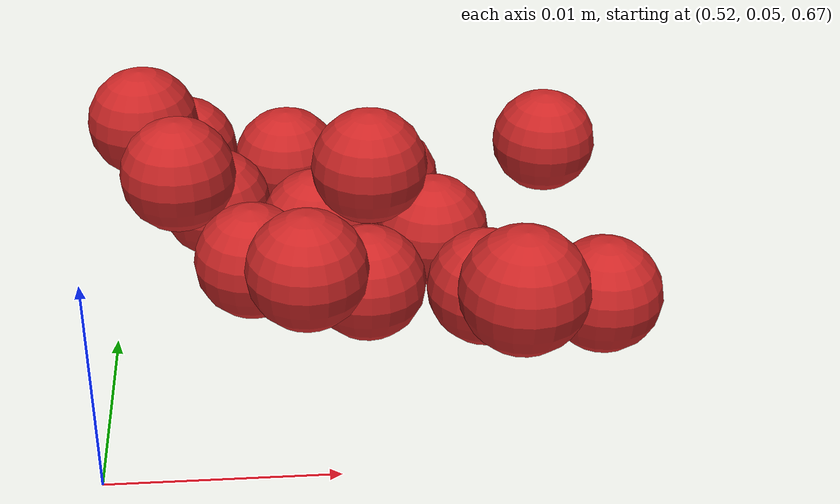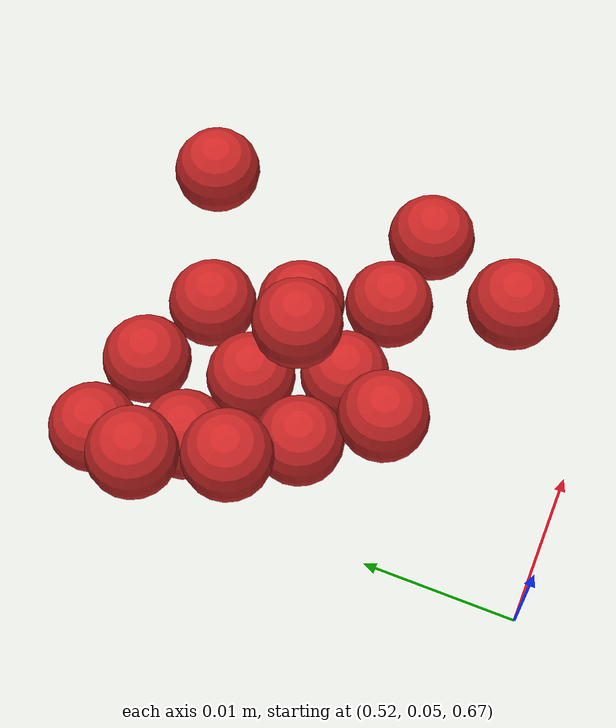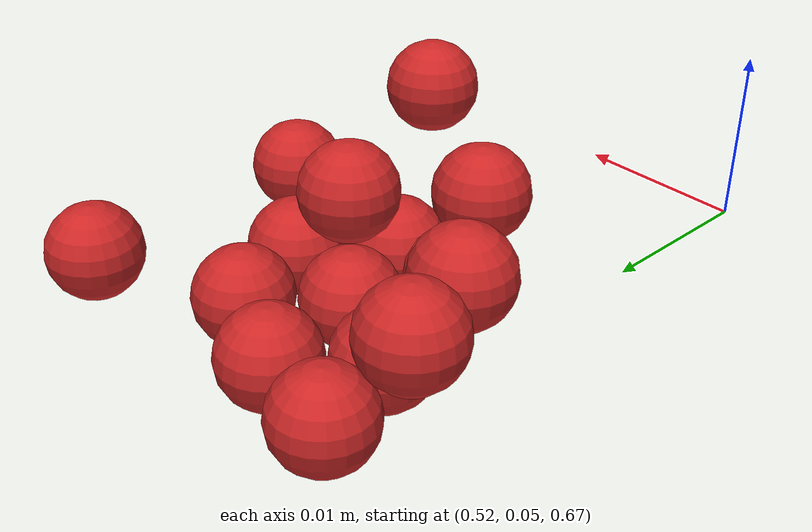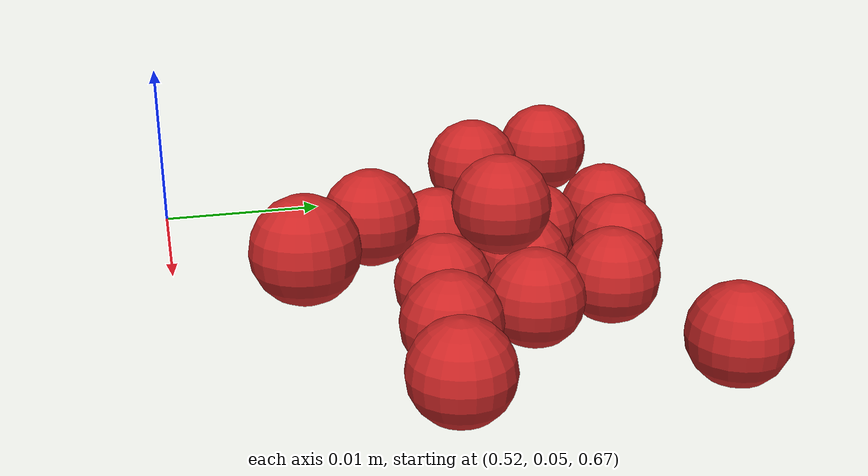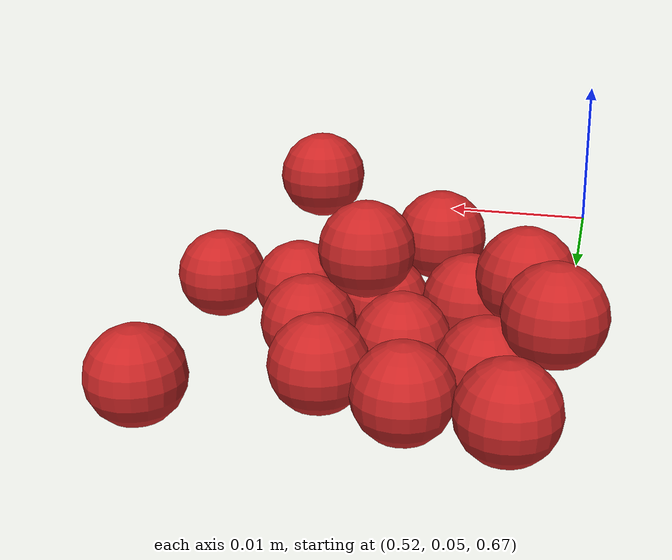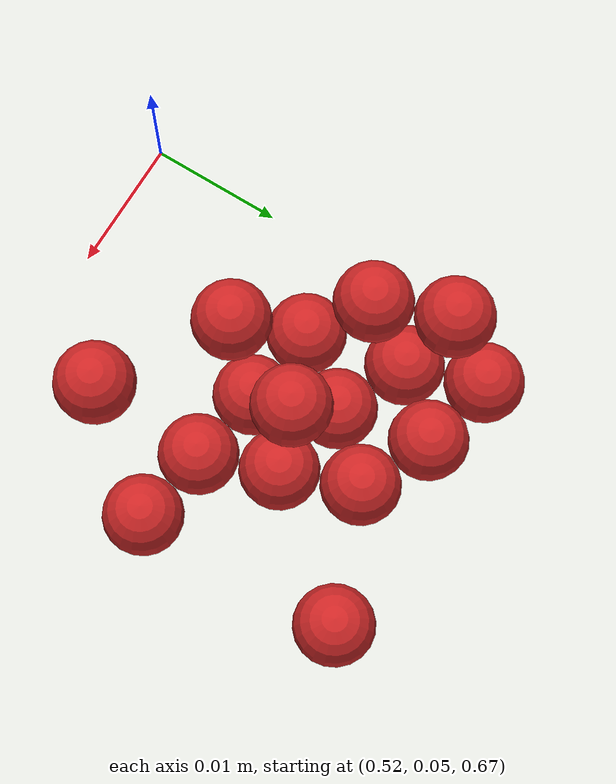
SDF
<sdf version="1.4">
 <world name="default">
  <model name="ground_plane">
   <static>1</static>
   <link name="link">
    <collision name="collision">
     <geometry><plane><normal>0 0 1</normal><size>100 100</size></plane></geometry>
     <surface><friction><ode><mu>100</mu><mu2>50</mu2></ode></friction></surface>
    </collision>
    <visual name="visual">
     <cast_shadows>0</cast_shadows>
     <geometry><plane><normal>0 0 1</normal><size>100 100</size></plane></geometry>
     <material>
      <script><uri>file://media/materials/scripts/gazebo.material</uri><name>Gazebo/Grey</name></script>
     </material>
    </visual>
    <velocity_decay><linear>0</linear><angular>0</angular></velocity_decay>
   </link>
  </model>
  <model name="sphere0">
   <pose>-0.001602 -0.00214 -0.026625 -0.000708 -0.001109 -1.3e-05</pose>
   <link name="link">
    <pose>0.534545 0.067517 0.694885 0 -0 0</pose>
    <inertial>
     <mass>1e-08</mass>
     <inertia><ixx>4e-08</ixx><ixy>0</ixy><ixz>0</ixz><iyy>4e-08</iyy><iyz>0</iyz><izz>4e-08</izz></inertia>
    </inertial>
    <collision name="collision">
     <surface>
      <bounce><restitution_coefficient>0.5</restitution_coefficient><threshold>0</threshold></bounce>
      <contact><ode><kp>1e+08</kp><kd>1</kd></ode></contact>
      <friction><ode><mu>1e-06</mu><mu2>1e-06</mu2></ode></friction>
     </surface>
     <geometry><sphere><radius>0.003</radius></sphere></geometry>
    </collision>
    <visual name="visual">
     <geometry><sphere><radius>0.003</radius></sphere></geometry>
     <material>
      <script><uri>file://media/materials/scripts/gazebo.material</uri><name>Gazebo/Red</name></script>
     </material>
    </visual>
    <velocity_decay><linear>0</linear><angular>0</angular></velocity_decay>
   </link>
   <static>0</static>
  </model>
  <model name="sphere4">
   <pose>-0.004573 -0.00176 -0.026239 0.000105 -0.000252 -3.30872e-24</pose>
   <link name="link">
    <pose>0.534545 0.073517 0.694885 0 -0 0</pose>
    <inertial>
     <mass>1e-08</mass>
     <inertia><ixx>4e-08</ixx><ixy>0</ixy><ixz>0</ixz><iyy>4e-08</iyy><iyz>0</iyz><izz>4e-08</izz></inertia>
    </inertial>
    <collision name="collision">
     <surface>
      <bounce><restitution_coefficient>0.5</restitution_coefficient><threshold>0</threshold></bounce>
      <contact><ode><kp>1e+08</kp><kd>1</kd></ode></contact>
      <friction><ode><mu>1e-06</mu><mu2>1e-06</mu2></ode></friction>
     </surface>
     <geometry><sphere><radius>0.003</radius></sphere></geometry>
    </collision>
    <visual name="visual">
     <geometry><sphere><radius>0.003</radius></sphere></geometry>
     <material>
      <script><uri>file://media/materials/scripts/gazebo.material</uri><name>Gazebo/Red</name></script>
     </material>
    </visual>
    <velocity_decay><linear>0</linear><angular>0</angular></velocity_decay>
   </link>
   <static>0</static>
  </model>
  <model name="sphere5">
   <pose>-0.006587 0.002887 -0.026107 0.000405 -0.000181 0</pose>
   <link name="link">
    <pose>0.540545 0.073517 0.694885 0 -0 0</pose>
    <inertial>
     <mass>1e-08</mass>
     <inertia><ixx>4e-08</ixx><ixy>0</ixy><ixz>0</ixz><iyy>4e-08</iyy><iyz>0</iyz><izz>4e-08</izz></inertia>
    </inertial>
    <collision name="collision">
     <surface>
      <bounce><restitution_coefficient>0.5</restitution_coefficient><threshold>0</threshold></bounce>
      <contact><ode><kp>1e+08</kp><kd>1</kd></ode></contact>
      <friction><ode><mu>1e-06</mu><mu2>1e-06</mu2></ode></friction>
     </surface>
     <geometry><sphere><radius>0.003</radius></sphere></geometry>
    </collision>
    <visual name="visual">
     <geometry><sphere><radius>0.003</radius></sphere></geometry>
     <material>
      <script><uri>file://media/materials/scripts/gazebo.material</uri><name>Gazebo/Red</name></script>
     </material>
    </visual>
    <velocity_decay><linear>0</linear><angular>0</angular></velocity_decay>
   </link>
   <static>0</static>
  </model>
  <model name="sphere10">
   <pose>-0.003062 0.000418 -0.02591 0.000197 7.5e-05 -1.65436e-24</pose>
   <link name="link">
    <pose>0.546545 0.079517 0.694885 0 -0 0</pose>
    <inertial>
     <mass>1e-08</mass>
     <inertia><ixx>4e-08</ixx><ixy>0</ixy><ixz>0</ixz><iyy>4e-08</iyy><iyz>0</iyz><izz>4e-08</izz></inertia>
    </inertial>
    <collision name="collision">
     <surface>
      <bounce><restitution_coefficient>0.5</restitution_coefficient><threshold>0</threshold></bounce>
      <contact><ode><kp>1e+08</kp><kd>1</kd></ode></contact>
      <friction><ode><mu>1e-06</mu><mu2>1e-06</mu2></ode></friction>
     </surface>
     <geometry><sphere><radius>0.003</radius></sphere></geometry>
    </collision>
    <visual name="visual">
     <geometry><sphere><radius>0.003</radius></sphere></geometry>
     <material>
      <script><uri>file://media/materials/scripts/gazebo.material</uri><name>Gazebo/Red</name></script>
     </material>
    </visual>
    <velocity_decay><linear>0</linear><angular>0</angular></velocity_decay>
   </link>
   <static>0</static>
  </model>
  <model name="sphere16">
   <pose>-0.008166 0.000151 -0.031257 0.000916 -9.1e-05 -0.000279</pose>
   <link name="link">
    <pose>0.534545 0.067517 0.700885 0 -0 0</pose>
    <inertial>
     <mass>1e-08</mass>
     <inertia><ixx>4e-08</ixx><ixy>0</ixy><ixz>0</ixz><iyy>4e-08</iyy><iyz>0</iyz><izz>4e-08</izz></inertia>
    </inertial>
    <collision name="collision">
     <surface>
      <bounce><restitution_coefficient>0.5</restitution_coefficient><threshold>0</threshold></bounce>
      <contact><ode><kp>1e+08</kp><kd>1</kd></ode></contact>
      <friction><ode><mu>1e-06</mu><mu2>1e-06</mu2></ode></friction>
     </surface>
     <geometry><sphere><radius>0.003</radius></sphere></geometry>
    </collision>
    <visual name="visual">
     <geometry><sphere><radius>0.003</radius></sphere></geometry>
     <material>
      <script><uri>file://media/materials/scripts/gazebo.material</uri><name>Gazebo/Red</name></script>
     </material>
    </visual>
    <velocity_decay><linear>0</linear><angular>0</angular></velocity_decay>
   </link>
   <static>0</static>
  </model>
  <model name="sphere17">
   <pose>-0.001929 -0.010718 -0.02668 0.000136 -0.000102 0.000212</pose>
   <link name="link">
    <pose>0.540545 0.067517 0.700885 0 -0 0</pose>
    <inertial>
     <mass>1e-08</mass>
     <inertia><ixx>4e-08</ixx><ixy>0</ixy><ixz>0</ixz><iyy>4e-08</iyy><iyz>0</iyz><izz>4e-08</izz></inertia>
    </inertial>
    <collision name="collision">
     <surface>
      <bounce><restitution_coefficient>0.5</restitution_coefficient><threshold>0</threshold></bounce>
      <contact><ode><kp>1e+08</kp><kd>1</kd></ode></contact>
      <friction><ode><mu>1e-06</mu><mu2>1e-06</mu2></ode></friction>
     </surface>
     <geometry><sphere><radius>0.003</radius></sphere></geometry>
    </collision>
    <visual name="visual">
     <geometry><sphere><radius>0.003</radius></sphere></geometry>
     <material>
      <script><uri>file://media/materials/scripts/gazebo.material</uri><name>Gazebo/Red</name></script>
     </material>
    </visual>
    <velocity_decay><linear>0</linear><angular>0</angular></velocity_decay>
   </link>
   <static>0</static>
  </model>
  <model name="sphere20">
   <pose>-0.009894 0.000147 -0.03225 -0.000743 -0.000452 -3e-05</pose>
   <link name="link">
    <pose>0.534545 0.073517 0.700885 0 -0 0</pose>
    <inertial>
     <mass>1e-08</mass>
     <inertia><ixx>4e-08</ixx><ixy>0</ixy><ixz>0</ixz><iyy>4e-08</iyy><iyz>0</iyz><izz>4e-08</izz></inertia>
    </inertial>
    <collision name="collision">
     <surface>
      <bounce><restitution_coefficient>0.5</restitution_coefficient><threshold>0</threshold></bounce>
      <contact><ode><kp>1e+08</kp><kd>1</kd></ode></contact>
      <friction><ode><mu>1e-06</mu><mu2>1e-06</mu2></ode></friction>
     </surface>
     <geometry><sphere><radius>0.003</radius></sphere></geometry>
    </collision>
    <visual name="visual">
     <geometry><sphere><radius>0.003</radius></sphere></geometry>
     <material>
      <script><uri>file://media/materials/scripts/gazebo.material</uri><name>Gazebo/Red</name></script>
     </material>
    </visual>
    <velocity_decay><linear>0</linear><angular>0</angular></velocity_decay>
   </link>
   <static>0</static>
  </model>
  <model name="sphere21">
   <pose>-0.004246 -0.003203 -0.032221 -0.000283 -0.00048 -2.64698e-23</pose>
   <link name="link">
    <pose>0.540545 0.073517 0.700885 0 -0 0</pose>
    <inertial>
     <mass>1e-08</mass>
     <inertia><ixx>4e-08</ixx><ixy>0</ixy><ixz>0</ixz><iyy>4e-08</iyy><iyz>0</iyz><izz>4e-08</izz></inertia>
    </inertial>
    <collision name="collision">
     <surface>
      <bounce><restitution_coefficient>0.5</restitution_coefficient><threshold>0</threshold></bounce>
      <contact><ode><kp>1e+08</kp><kd>1</kd></ode></contact>
      <friction><ode><mu>1e-06</mu><mu2>1e-06</mu2></ode></friction>
     </surface>
     <geometry><sphere><radius>0.003</radius></sphere></geometry>
    </collision>
    <visual name="visual">
     <geometry><sphere><radius>0.003</radius></sphere></geometry>
     <material>
      <script><uri>file://media/materials/scripts/gazebo.material</uri><name>Gazebo/Red</name></script>
     </material>
    </visual>
    <velocity_decay><linear>0</linear><angular>0</angular></velocity_decay>
   </link>
   <static>0</static>
  </model>
  <model name="sphere22">
   <pose>-0.002006 -0.009545 -0.032442 4.9e-05 -0.000792 6.61745e-24</pose>
   <link name="link">
    <pose>0.546545 0.073517 0.700885 0 -0 0</pose>
    <inertial>
     <mass>1e-08</mass>
     <inertia><ixx>4e-08</ixx><ixy>0</ixy><ixz>0</ixz><iyy>4e-08</iyy><iyz>0</iyz><izz>4e-08</izz></inertia>
    </inertial>
    <collision name="collision">
     <surface>
      <bounce><restitution_coefficient>0.5</restitution_coefficient><threshold>0</threshold></bounce>
      <contact><ode><kp>1e+08</kp><kd>1</kd></ode></contact>
      <friction><ode><mu>1e-06</mu><mu2>1e-06</mu2></ode></friction>
     </surface>
     <geometry><sphere><radius>0.003</radius></sphere></geometry>
    </collision>
    <visual name="visual">
     <geometry><sphere><radius>0.003</radius></sphere></geometry>
     <material>
      <script><uri>file://media/materials/scripts/gazebo.material</uri><name>Gazebo/Red</name></script>
     </material>
    </visual>
    <velocity_decay><linear>0</linear><angular>0</angular></velocity_decay>
   </link>
   <static>0</static>
  </model>
  <model name="sphere24">
   <pose>-0.011701 0.000533 -0.03202 0.00018 -0.000489 -0.000103</pose>
   <link name="link">
    <pose>0.534545 0.079517 0.700885 0 -0 0</pose>
    <inertial>
     <mass>1e-08</mass>
     <inertia><ixx>4e-08</ixx><ixy>0</ixy><ixz>0</ixz><iyy>4e-08</iyy><iyz>0</iyz><izz>4e-08</izz></inertia>
    </inertial>
    <collision name="collision">
     <surface>
      <bounce><restitution_coefficient>0.5</restitution_coefficient><threshold>0</threshold></bounce>
      <contact><ode><kp>1e+08</kp><kd>1</kd></ode></contact>
      <friction><ode><mu>1e-06</mu><mu2>1e-06</mu2></ode></friction>
     </surface>
     <geometry><sphere><radius>0.003</radius></sphere></geometry>
    </collision>
    <visual name="visual">
     <geometry><sphere><radius>0.003</radius></sphere></geometry>
     <material>
      <script><uri>file://media/materials/scripts/gazebo.material</uri><name>Gazebo/Red</name></script>
     </material>
    </visual>
    <velocity_decay><linear>0</linear><angular>0</angular></velocity_decay>
   </link>
   <static>0</static>
  </model>
  <model name="sphere25">
   <pose>-0.01209 -0.001053 -0.032008 -0.000205 -0.000119 0</pose>
   <link name="link">
    <pose>0.540545 0.079517 0.700885 0 -0 0</pose>
    <inertial>
     <mass>1e-08</mass>
     <inertia><ixx>4e-08</ixx><ixy>0</ixy><ixz>0</ixz><iyy>4e-08</iyy><iyz>0</iyz><izz>4e-08</izz></inertia>
    </inertial>
    <collision name="collision">
     <surface>
      <bounce><restitution_coefficient>0.5</restitution_coefficient><threshold>0</threshold></bounce>
      <contact><ode><kp>1e+08</kp><kd>1</kd></ode></contact>
      <friction><ode><mu>1e-06</mu><mu2>1e-06</mu2></ode></friction>
     </surface>
     <geometry><sphere><radius>0.003</radius></sphere></geometry>
    </collision>
    <visual name="visual">
     <geometry><sphere><radius>0.003</radius></sphere></geometry>
     <material>
      <script><uri>file://media/materials/scripts/gazebo.material</uri><name>Gazebo/Red</name></script>
     </material>
    </visual>
    <velocity_decay><linear>0</linear><angular>0</angular></velocity_decay>
   </link>
   <static>0</static>
  </model>
  <model name="sphere48">
   <pose>-0.005546 -0.005321 -0.040677 0.000195 -1.1e-05 9e-05</pose>
   <link name="link">
    <pose>0.534545 0.067517 0.712885 0 -0 0</pose>
    <inertial>
     <mass>1e-08</mass>
     <inertia><ixx>4e-08</ixx><ixy>0</ixy><ixz>0</ixz><iyy>4e-08</iyy><iyz>0</iyz><izz>4e-08</izz></inertia>
    </inertial>
    <collision name="collision">
     <surface>
      <bounce><restitution_coefficient>0.5</restitution_coefficient><threshold>0</threshold></bounce>
      <contact><ode><kp>1e+08</kp><kd>1</kd></ode></contact>
      <friction><ode><mu>1e-06</mu><mu2>1e-06</mu2></ode></friction>
     </surface>
     <geometry><sphere><radius>0.003</radius></sphere></geometry>
    </collision>
    <visual name="visual">
     <geometry><sphere><radius>0.003</radius></sphere></geometry>
     <material>
      <script><uri>file://media/materials/scripts/gazebo.material</uri><name>Gazebo/Red</name></script>
     </material>
    </visual>
    <velocity_decay><linear>0</linear><angular>0</angular></velocity_decay>
   </link>
   <static>0</static>
  </model>
  <model name="sphere49">
   <pose>-0.002728 -0.002438 -0.043754 0.000245 0.000389 -1.32349e-23</pose>
   <link name="link">
    <pose>0.540545 0.067517 0.712885 0 -0 0</pose>
    <inertial>
     <mass>1e-08</mass>
     <inertia><ixx>4e-08</ixx><ixy>0</ixy><ixz>0</ixz><iyy>4e-08</iyy><iyz>0</iyz><izz>4e-08</izz></inertia>
    </inertial>
    <collision name="collision">
     <surface>
      <bounce><restitution_coefficient>0.5</restitution_coefficient><threshold>0</threshold></bounce>
      <contact><ode><kp>1e+08</kp><kd>1</kd></ode></contact>
      <friction><ode><mu>1e-06</mu><mu2>1e-06</mu2></ode></friction>
     </surface>
     <geometry><sphere><radius>0.003</radius></sphere></geometry>
    </collision>
    <visual name="visual">
     <geometry><sphere><radius>0.003</radius></sphere></geometry>
     <material>
      <script><uri>file://media/materials/scripts/gazebo.material</uri><name>Gazebo/Red</name></script>
     </material>
    </visual>
    <velocity_decay><linear>0</linear><angular>0</angular></velocity_decay>
   </link>
   <static>0</static>
  </model>
  <model name="sphere52">
   <pose>-0.011811 -0.003195 -0.039955 6.6e-05 -0.000161 -2.9e-05</pose>
   <link name="link">
    <pose>0.534545 0.073517 0.712885 0 -0 0</pose>
    <inertial>
     <mass>1e-08</mass>
     <inertia><ixx>4e-08</ixx><ixy>0</ixy><ixz>0</ixz><iyy>4e-08</iyy><iyz>0</iyz><izz>4e-08</izz></inertia>
    </inertial>
    <collision name="collision">
     <surface>
      <bounce><restitution_coefficient>0.5</restitution_coefficient><threshold>0</threshold></bounce>
      <contact><ode><kp>1e+08</kp><kd>1</kd></ode></contact>
      <friction><ode><mu>1e-06</mu><mu2>1e-06</mu2></ode></friction>
     </surface>
     <geometry><sphere><radius>0.003</radius></sphere></geometry>
    </collision>
    <visual name="visual">
     <geometry><sphere><radius>0.003</radius></sphere></geometry>
     <material>
      <script><uri>file://media/materials/scripts/gazebo.material</uri><name>Gazebo/Red</name></script>
     </material>
    </visual>
    <velocity_decay><linear>0</linear><angular>0</angular></velocity_decay>
   </link>
   <static>0</static>
  </model>
  <model name="sphere56">
   <pose>-0.014175 -0.003908 -0.039577 -0.000128 0.000299 0.000317</pose>
   <link name="link">
    <pose>0.534545 0.079517 0.712885 0 -0 0</pose>
    <inertial>
     <mass>1e-08</mass>
     <inertia><ixx>4e-08</ixx><ixy>0</ixy><ixz>0</ixz><iyy>4e-08</iyy><iyz>0</iyz><izz>4e-08</izz></inertia>
    </inertial>
    <collision name="collision">
     <surface>
      <bounce><restitution_coefficient>0.5</restitution_coefficient><threshold>0</threshold></bounce>
      <contact><ode><kp>1e+08</kp><kd>1</kd></ode></contact>
      <friction><ode><mu>1e-06</mu><mu2>1e-06</mu2></ode></friction>
     </surface>
     <geometry><sphere><radius>0.003</radius></sphere></geometry>
    </collision>
    <visual name="visual">
     <geometry><sphere><radius>0.003</radius></sphere></geometry>
     <material>
      <script><uri>file://media/materials/scripts/gazebo.material</uri><name>Gazebo/Red</name></script>
     </material>
    </visual>
    <velocity_decay><linear>0</linear><angular>0</angular></velocity_decay>
   </link>
   <static>0</static>
  </model>
  <model name="sphere64">
   <pose>-0.002065 0.001876 -0.045239 0 -0 0</pose>
   <link name="link">
    <pose>0.534545 0.067517 0.718885 0 -0 0</pose>
    <inertial>
     <mass>1e-08</mass>
     <inertia><ixx>4e-08</ixx><ixy>0</ixy><ixz>0</ixz><iyy>4e-08</iyy><iyz>0</iyz><izz>4e-08</izz></inertia>
    </inertial>
    <collision name="collision">
     <surface>
      <bounce><restitution_coefficient>0.5</restitution_coefficient><threshold>0</threshold></bounce>
      <contact><ode><kp>1e+08</kp><kd>1</kd></ode></contact>
      <friction><ode><mu>1e-06</mu><mu2>1e-06</mu2></ode></friction>
     </surface>
     <geometry><sphere><radius>0.003</radius></sphere></geometry>
    </collision>
    <visual name="visual">
     <geometry><sphere><radius>0.003</radius></sphere></geometry>
     <material>
      <script><uri>file://media/materials/scripts/gazebo.material</uri><name>Gazebo/Red</name></script>
     </material>
    </visual>
    <velocity_decay><linear>0</linear><angular>0</angular></velocity_decay>
   </link>
   <static>0</static>
  </model>
 </world>
</sdf>
